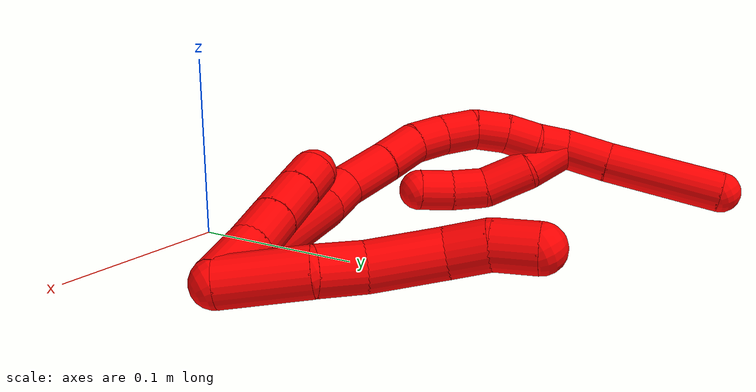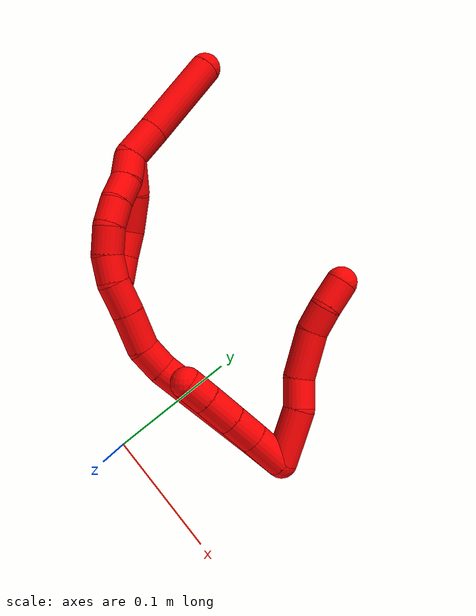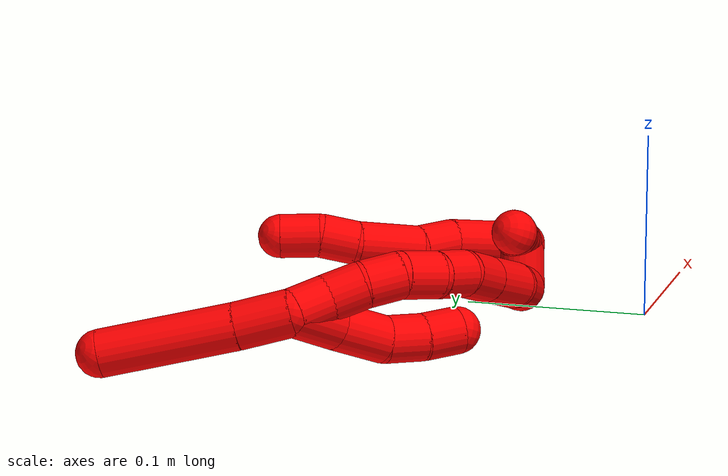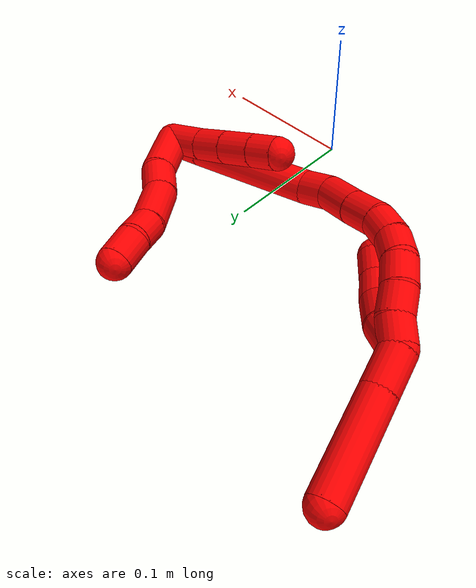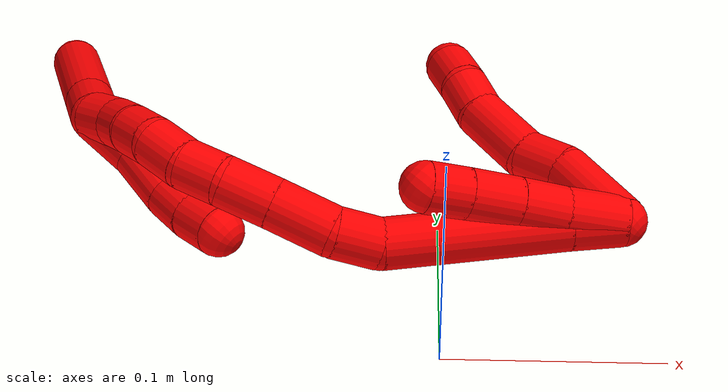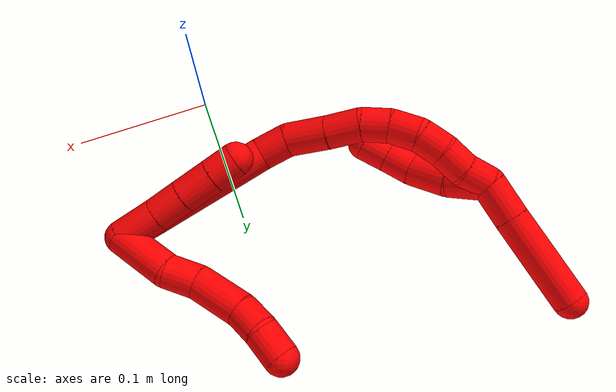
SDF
<sdf version="1.7">
 <world name="default">
  <model name="2">
   <static>0</static>
   <link name="2">
    <collision name="collision-cylinder-e_1_2_8">
     <pose>-0.0006 0.009678 0.019788 -0.454863 -0.027252 0.006307</pose>
     <geometry><cylinder><radius>0.0125</radius><length>0.044072</length></cylinder></geometry>
     <surface>
      <friction><ode><mu>1.16</mu><mu2>1.16</mu2><slip1>0</slip1><slip2>0</slip2></ode></friction>
      <contact><ode><kp>1e+06</kp><kd>1</kd><max_vel>0</max_vel><min_depth>0.001</min_depth></ode></contact>
     </surface>
    </collision>
    <visual name="visual-cylinder-e_1_2_8">
     <pose>-0.0006 0.009678 0.019788 -0.454863 -0.027252 0.006307</pose>
     <geometry><cylinder><radius>0.0125</radius><length>0.044072</length></cylinder></geometry>
     <material><ambient>1 0 0 1</ambient></material>
    </visual>
    <collision name="collision-cylinder-e_2_8_9">
     <pose>-0.004984 0.022444 0.050459 -0.276574 -0.322746 0.045305</pose>
     <geometry><cylinder><radius>0.0125</radius><length>0.023856</length></cylinder></geometry>
     <surface>
      <friction><ode><mu>1.16</mu><mu2>1.16</mu2><slip1>0</slip1><slip2>0</slip2></ode></friction>
      <contact><ode><kp>1e+06</kp><kd>1</kd><max_vel>0</max_vel><min_depth>0.001</min_depth></ode></contact>
     </surface>
    </collision>
    <visual name="visual-cylinder-e_2_8_9">
     <pose>-0.004984 0.022444 0.050459 -0.276574 -0.322746 0.045305</pose>
     <geometry><cylinder><radius>0.0125</radius><length>0.023856</length></cylinder></geometry>
     <material><ambient>1 0 0 1</ambient></material>
    </visual>
    <collision name="collision-cylinder-e_3_9_10">
     <pose>-0.00917 0.032739 0.079033 -0.386769 -0.021063 0.004125</pose>
     <geometry><cylinder><radius>0.0125</radius><length>0.038216</length></cylinder></geometry>
     <surface>
      <friction><ode><mu>1.16</mu><mu2>1.16</mu2><slip1>0</slip1><slip2>0</slip2></ode></friction>
      <contact><ode><kp>1e+06</kp><kd>1</kd><max_vel>0</max_vel><min_depth>0.001</min_depth></ode></contact>
     </surface>
    </collision>
    <visual name="visual-cylinder-e_3_9_10">
     <pose>-0.00917 0.032739 0.079033 -0.386769 -0.021063 0.004125</pose>
     <geometry><cylinder><radius>0.0125</radius><length>0.038216</length></cylinder></geometry>
     <material><ambient>1 0 0 1</ambient></material>
    </visual>
    <collision name="collision-cylinder-e_4_10_11">
     <pose>-0.007635 0.045069 0.105794 -0.514315 0.18385 -0.048476</pose>
     <geometry><cylinder><radius>0.0125</radius><length>0.021188</length></cylinder></geometry>
     <surface>
      <friction><ode><mu>1.16</mu><mu2>1.16</mu2><slip1>0</slip1><slip2>0</slip2></ode></friction>
      <contact><ode><kp>1e+06</kp><kd>1</kd><max_vel>0</max_vel><min_depth>0.001</min_depth></ode></contact>
     </surface>
    </collision>
    <visual name="visual-cylinder-e_4_10_11">
     <pose>-0.007635 0.045069 0.105794 -0.514315 0.18385 -0.048476</pose>
     <geometry><cylinder><radius>0.0125</radius><length>0.021188</length></cylinder></geometry>
     <material><ambient>1 0 0 1</ambient></material>
    </visual>
    <collision name="collision-cylinder-e_5_11_6">
     <pose>-0.005253 0.057787 0.123264 -0.734954 0.039358 -0.015153</pose>
     <geometry><cylinder><radius>0.0125</radius><length>0.022668</length></cylinder></geometry>
     <surface>
      <friction><ode><mu>1.16</mu><mu2>1.16</mu2><slip1>0</slip1><slip2>0</slip2></ode></friction>
      <contact><ode><kp>1e+06</kp><kd>1</kd><max_vel>0</max_vel><min_depth>0.001</min_depth></ode></contact>
     </surface>
    </collision>
    <visual name="visual-cylinder-e_5_11_6">
     <pose>-0.005253 0.057787 0.123264 -0.734954 0.039358 -0.015153</pose>
     <geometry><cylinder><radius>0.0125</radius><length>0.022668</length></cylinder></geometry>
     <material><ambient>1 0 0 1</ambient></material>
    </visual>
    <collision name="collision-cylinder-e_1_2_12">
     <pose>-0.005519 -0.008826 0.010967 0.677625 -0.373642 -0.133029</pose>
     <geometry><cylinder><radius>0.0125</radius><length>0.030241</length></cylinder></geometry>
     <surface>
      <friction><ode><mu>1.16</mu><mu2>1.16</mu2><slip1>0</slip1><slip2>0</slip2></ode></friction>
      <contact><ode><kp>1e+06</kp><kd>1</kd><max_vel>0</max_vel><min_depth>0.001</min_depth></ode></contact>
     </surface>
    </collision>
    <visual name="visual-cylinder-e_1_2_12">
     <pose>-0.005519 -0.008826 0.010967 0.677625 -0.373642 -0.133029</pose>
     <geometry><cylinder><radius>0.0125</radius><length>0.030241</length></cylinder></geometry>
     <material><ambient>1 0 0 1</ambient></material>
    </visual>
    <collision name="collision-cylinder-e_2_12_13">
     <pose>-0.014712 -0.024919 0.030553 0.700548 -0.314995 -0.115911</pose>
     <geometry><cylinder><radius>0.0125</radius><length>0.023716</length></cylinder></geometry>
     <surface>
      <friction><ode><mu>1.16</mu><mu2>1.16</mu2><slip1>0</slip1><slip2>0</slip2></ode></friction>
      <contact><ode><kp>1e+06</kp><kd>1</kd><max_vel>0</max_vel><min_depth>0.001</min_depth></ode></contact>
     </surface>
    </collision>
    <visual name="visual-cylinder-e_2_12_13">
     <pose>-0.014712 -0.024919 0.030553 0.700548 -0.314995 -0.115911</pose>
     <geometry><cylinder><radius>0.0125</radius><length>0.023716</length></cylinder></geometry>
     <material><ambient>1 0 0 1</ambient></material>
    </visual>
    <collision name="collision-cylinder-e_3_13_14">
     <pose>-0.022573 -0.040021 0.048424 0.702633 -0.332555 -0.122869</pose>
     <geometry><cylinder><radius>0.0125</radius><length>0.025651</length></cylinder></geometry>
     <surface>
      <friction><ode><mu>1.16</mu><mu2>1.16</mu2><slip1>0</slip1><slip2>0</slip2></ode></friction>
      <contact><ode><kp>1e+06</kp><kd>1</kd><max_vel>0</max_vel><min_depth>0.001</min_depth></ode></contact>
     </surface>
    </collision>
    <visual name="visual-cylinder-e_3_13_14">
     <pose>-0.022573 -0.040021 0.048424 0.702633 -0.332555 -0.122869</pose>
     <geometry><cylinder><radius>0.0125</radius><length>0.025651</length></cylinder></geometry>
     <material><ambient>1 0 0 1</ambient></material>
    </visual>
    <collision name="collision-cylinder-e_4_14_5">
     <pose>-0.030281 -0.054102 0.064924 0.711224 -0.352586 -0.132132</pose>
     <geometry><cylinder><radius>0.0125</radius><length>0.020392</length></cylinder></geometry>
     <surface>
      <friction><ode><mu>1.16</mu><mu2>1.16</mu2><slip1>0</slip1><slip2>0</slip2></ode></friction>
      <contact><ode><kp>1e+06</kp><kd>1</kd><max_vel>0</max_vel><min_depth>0.001</min_depth></ode></contact>
     </surface>
    </collision>
    <visual name="visual-cylinder-e_4_14_5">
     <pose>-0.030281 -0.054102 0.064924 0.711224 -0.352586 -0.132132</pose>
     <geometry><cylinder><radius>0.0125</radius><length>0.020392</length></cylinder></geometry>
     <material><ambient>1 0 0 1</ambient></material>
    </visual>
    <collision name="collision-cylinder-e_1_2_15">
     <pose>-0.007637 -0.007066 0.008508 0.693092 -0.604353 -0.224194</pose>
     <geometry><cylinder><radius>0.0125</radius><length>0.02688</length></cylinder></geometry>
     <surface>
      <friction><ode><mu>1.16</mu><mu2>1.16</mu2><slip1>0</slip1><slip2>0</slip2></ode></friction>
      <contact><ode><kp>1e+06</kp><kd>1</kd><max_vel>0</max_vel><min_depth>0.001</min_depth></ode></contact>
     </surface>
    </collision>
    <visual name="visual-cylinder-e_1_2_15">
     <pose>-0.007637 -0.007066 0.008508 0.693092 -0.604353 -0.224194</pose>
     <geometry><cylinder><radius>0.0125</radius><length>0.02688</length></cylinder></geometry>
     <material><ambient>1 0 0 1</ambient></material>
    </visual>
    <collision name="collision-cylinder-e_2_15_16">
     <pose>-0.041623 -0.038419 0.044971 0.715288 -0.618414 -0.237644</pose>
     <geometry><cylinder><radius>0.0125</radius><length>0.090899</length></cylinder></geometry>
     <surface>
      <friction><ode><mu>1.16</mu><mu2>1.16</mu2><slip1>0</slip1><slip2>0</slip2></ode></friction>
      <contact><ode><kp>1e+06</kp><kd>1</kd><max_vel>0</max_vel><min_depth>0.001</min_depth></ode></contact>
     </surface>
    </collision>
    <visual name="visual-cylinder-e_2_15_16">
     <pose>-0.041623 -0.038419 0.044971 0.715288 -0.618414 -0.237644</pose>
     <geometry><cylinder><radius>0.0125</radius><length>0.090899</length></cylinder></geometry>
     <material><ambient>1 0 0 1</ambient></material>
    </visual>
    <collision name="collision-cylinder-e_3_16_17">
     <pose>-0.071357 -0.068551 0.082134 0.56563 -0.300917 -0.088057</pose>
     <geometry><cylinder><radius>0.0125</radius><length>0.022839</length></cylinder></geometry>
     <surface>
      <friction><ode><mu>1.16</mu><mu2>1.16</mu2><slip1>0</slip1><slip2>0</slip2></ode></friction>
      <contact><ode><kp>1e+06</kp><kd>1</kd><max_vel>0</max_vel><min_depth>0.001</min_depth></ode></contact>
     </surface>
    </collision>
    <visual name="visual-cylinder-e_3_16_17">
     <pose>-0.071357 -0.068551 0.082134 0.56563 -0.300917 -0.088057</pose>
     <geometry><cylinder><radius>0.0125</radius><length>0.022839</length></cylinder></geometry>
     <material><ambient>1 0 0 1</ambient></material>
    </visual>
    <collision name="collision-cylinder-e_4_17_18">
     <pose>-0.077778 -0.078013 0.105977 0.242264 -0.198778 -0.024276</pose>
     <geometry><cylinder><radius>0.0125</radius><length>0.030757</length></cylinder></geometry>
     <surface>
      <friction><ode><mu>1.16</mu><mu2>1.16</mu2><slip1>0</slip1><slip2>0</slip2></ode></friction>
      <contact><ode><kp>1e+06</kp><kd>1</kd><max_vel>0</max_vel><min_depth>0.001</min_depth></ode></contact>
     </surface>
    </collision>
    <visual name="visual-cylinder-e_4_17_18">
     <pose>-0.077778 -0.078013 0.105977 0.242264 -0.198778 -0.024276</pose>
     <geometry><cylinder><radius>0.0125</radius><length>0.030757</length></cylinder></geometry>
     <material><ambient>1 0 0 1</ambient></material>
    </visual>
    <collision name="collision-cylinder-e_5_18_19">
     <pose>-0.083458 -0.085246 0.132667 0.291425 -0.207016 -0.030487</pose>
     <geometry><cylinder><radius>0.0125</radius><length>0.025719</length></cylinder></geometry>
     <surface>
      <friction><ode><mu>1.16</mu><mu2>1.16</mu2><slip1>0</slip1><slip2>0</slip2></ode></friction>
      <contact><ode><kp>1e+06</kp><kd>1</kd><max_vel>0</max_vel><min_depth>0.001</min_depth></ode></contact>
     </surface>
    </collision>
    <visual name="visual-cylinder-e_5_18_19">
     <pose>-0.083458 -0.085246 0.132667 0.291425 -0.207016 -0.030487</pose>
     <geometry><cylinder><radius>0.0125</radius><length>0.025719</length></cylinder></geometry>
     <material><ambient>1 0 0 1</ambient></material>
    </visual>
    <collision name="collision-cylinder-e_6_19_20">
     <pose>-0.088996 -0.08892 0.154673 0.005895 -0.28309 -0.00084</pose>
     <geometry><cylinder><radius>0.0125</radius><length>0.020729</length></cylinder></geometry>
     <surface>
      <friction><ode><mu>1.16</mu><mu2>1.16</mu2><slip1>0</slip1><slip2>0</slip2></ode></friction>
      <contact><ode><kp>1e+06</kp><kd>1</kd><max_vel>0</max_vel><min_depth>0.001</min_depth></ode></contact>
     </surface>
    </collision>
    <visual name="visual-cylinder-e_6_19_20">
     <pose>-0.088996 -0.08892 0.154673 0.005895 -0.28309 -0.00084</pose>
     <geometry><cylinder><radius>0.0125</radius><length>0.020729</length></cylinder></geometry>
     <material><ambient>1 0 0 1</ambient></material>
    </visual>
    <collision name="collision-cylinder-e_7_20_21">
     <pose>-0.093566 -0.0864 0.175113 -0.241135 -0.153833 0.018674</pose>
     <geometry><cylinder><radius>0.0125</radius><length>0.021859</length></cylinder></geometry>
     <surface>
      <friction><ode><mu>1.16</mu><mu2>1.16</mu2><slip1>0</slip1><slip2>0</slip2></ode></friction>
      <contact><ode><kp>1e+06</kp><kd>1</kd><max_vel>0</max_vel><min_depth>0.001</min_depth></ode></contact>
     </surface>
    </collision>
    <visual name="visual-cylinder-e_7_20_21">
     <pose>-0.093566 -0.0864 0.175113 -0.241135 -0.153833 0.018674</pose>
     <geometry><cylinder><radius>0.0125</radius><length>0.021859</length></cylinder></geometry>
     <material><ambient>1 0 0 1</ambient></material>
    </visual>
    <collision name="collision-cylinder-e_8_21_22">
     <pose>-0.0981 -0.078724 0.193867 -0.552504 -0.286318 0.081685</pose>
     <geometry><cylinder><radius>0.0125</radius><length>0.020246</length></cylinder></geometry>
     <surface>
      <friction><ode><mu>1.16</mu><mu2>1.16</mu2><slip1>0</slip1><slip2>0</slip2></ode></friction>
      <contact><ode><kp>1e+06</kp><kd>1</kd><max_vel>0</max_vel><min_depth>0.001</min_depth></ode></contact>
     </surface>
    </collision>
    <visual name="visual-cylinder-e_8_21_22">
     <pose>-0.0981 -0.078724 0.193867 -0.552504 -0.286318 0.081685</pose>
     <geometry><cylinder><radius>0.0125</radius><length>0.020246</length></cylinder></geometry>
     <material><ambient>1 0 0 1</ambient></material>
    </visual>
    <collision name="collision-cylinder-e_9_22_23">
     <pose>-0.104223 -0.06721 0.209104 -0.744023 -0.331807 0.13048</pose>
     <geometry><cylinder><radius>0.0125</radius><length>0.020043</length></cylinder></geometry>
     <surface>
      <friction><ode><mu>1.16</mu><mu2>1.16</mu2><slip1>0</slip1><slip2>0</slip2></ode></friction>
      <contact><ode><kp>1e+06</kp><kd>1</kd><max_vel>0</max_vel><min_depth>0.001</min_depth></ode></contact>
     </surface>
    </collision>
    <visual name="visual-cylinder-e_9_22_23">
     <pose>-0.104223 -0.06721 0.209104 -0.744023 -0.331807 0.13048</pose>
     <geometry><cylinder><radius>0.0125</radius><length>0.020043</length></cylinder></geometry>
     <material><ambient>1 0 0 1</ambient></material>
    </visual>
    <collision name="collision-cylinder-e_10_23_1">
     <pose>-0.111641 -0.056432 0.224077 -0.499013 -0.427627 0.110545</pose>
     <geometry><cylinder><radius>0.0125</radius><length>0.020029</length></cylinder></geometry>
     <surface>
      <friction><ode><mu>1.16</mu><mu2>1.16</mu2><slip1>0</slip1><slip2>0</slip2></ode></friction>
      <contact><ode><kp>1e+06</kp><kd>1</kd><max_vel>0</max_vel><min_depth>0.001</min_depth></ode></contact>
     </surface>
    </collision>
    <visual name="visual-cylinder-e_10_23_1">
     <pose>-0.111641 -0.056432 0.224077 -0.499013 -0.427627 0.110545</pose>
     <geometry><cylinder><radius>0.0125</radius><length>0.020029</length></cylinder></geometry>
     <material><ambient>1 0 0 1</ambient></material>
    </visual>
    <collision name="collision-cylinder-e_1_1_24">
     <pose>-0.117575 -0.040533 0.240804 -0.923304 -0.122483 0.060994</pose>
     <geometry><cylinder><radius>0.0125</radius><length>0.029151</length></cylinder></geometry>
     <surface>
      <friction><ode><mu>1.16</mu><mu2>1.16</mu2><slip1>0</slip1><slip2>0</slip2></ode></friction>
      <contact><ode><kp>1e+06</kp><kd>1</kd><max_vel>0</max_vel><min_depth>0.001</min_depth></ode></contact>
     </surface>
    </collision>
    <visual name="visual-cylinder-e_1_1_24">
     <pose>-0.117575 -0.040533 0.240804 -0.923304 -0.122483 0.060994</pose>
     <geometry><cylinder><radius>0.0125</radius><length>0.029151</length></cylinder></geometry>
     <material><ambient>1 0 0 1</ambient></material>
    </visual>
    <collision name="collision-cylinder-e_2_24_4">
     <pose>-0.122509 -0.001579 0.271741 -0.889906 -0.08914 0.042528</pose>
     <geometry><cylinder><radius>0.0125</radius><length>0.070849</length></cylinder></geometry>
     <surface>
      <friction><ode><mu>1.16</mu><mu2>1.16</mu2><slip1>0</slip1><slip2>0</slip2></ode></friction>
      <contact><ode><kp>1e+06</kp><kd>1</kd><max_vel>0</max_vel><min_depth>0.001</min_depth></ode></contact>
     </surface>
    </collision>
    <visual name="visual-cylinder-e_2_24_4">
     <pose>-0.122509 -0.001579 0.271741 -0.889906 -0.08914 0.042528</pose>
     <geometry><cylinder><radius>0.0125</radius><length>0.070849</length></cylinder></geometry>
     <material><ambient>1 0 0 1</ambient></material>
    </visual>
    <collision name="collision-cylinder-e_1_1_25">
     <pose>-0.115998 -0.051834 0.217521 -3.12529 -0.01398 1.41786</pose>
     <geometry><cylinder><radius>0.0125</radius><length>0.029122</length></cylinder></geometry>
     <surface>
      <friction><ode><mu>1.16</mu><mu2>1.16</mu2><slip1>0</slip1><slip2>0</slip2></ode></friction>
      <contact><ode><kp>1e+06</kp><kd>1</kd><max_vel>0</max_vel><min_depth>0.001</min_depth></ode></contact>
     </surface>
    </collision>
    <visual name="visual-cylinder-e_1_1_25">
     <pose>-0.115998 -0.051834 0.217521 -3.12529 -0.01398 1.41786</pose>
     <geometry><cylinder><radius>0.0125</radius><length>0.029122</length></cylinder></geometry>
     <material><ambient>1 0 0 1</ambient></material>
    </visual>
    <collision name="collision-cylinder-e_2_25_26">
     <pose>-0.117666 -0.054416 0.18857 2.94815 -0.099557 -0.948762</pose>
     <geometry><cylinder><radius>0.0125</radius><length>0.02948</length></cylinder></geometry>
     <surface>
      <friction><ode><mu>1.16</mu><mu2>1.16</mu2><slip1>0</slip1><slip2>0</slip2></ode></friction>
      <contact><ode><kp>1e+06</kp><kd>1</kd><max_vel>0</max_vel><min_depth>0.001</min_depth></ode></contact>
     </surface>
    </collision>
    <visual name="visual-cylinder-e_2_25_26">
     <pose>-0.117666 -0.054416 0.18857 2.94815 -0.099557 -0.948762</pose>
     <geometry><cylinder><radius>0.0125</radius><length>0.02948</length></cylinder></geometry>
     <material><ambient>1 0 0 1</ambient></material>
    </visual>
    <collision name="collision-cylinder-e_3_26_27">
     <pose>-0.117744 -0.061492 0.164575 2.72428 0.131364 0.602391</pose>
     <geometry><cylinder><radius>0.0125</radius><length>0.021187</length></cylinder></geometry>
     <surface>
      <friction><ode><mu>1.16</mu><mu2>1.16</mu2><slip1>0</slip1><slip2>0</slip2></ode></friction>
      <contact><ode><kp>1e+06</kp><kd>1</kd><max_vel>0</max_vel><min_depth>0.001</min_depth></ode></contact>
     </surface>
    </collision>
    <visual name="visual-cylinder-e_3_26_27">
     <pose>-0.117744 -0.061492 0.164575 2.72428 0.131364 0.602391</pose>
     <geometry><cylinder><radius>0.0125</radius><length>0.021187</length></cylinder></geometry>
     <material><ambient>1 0 0 1</ambient></material>
    </visual>
    <collision name="collision-cylinder-e_4_27_3">
     <pose>-0.113743 -0.069816 0.1461 2.71185 0.261606 1.08495</pose>
     <geometry><cylinder><radius>0.0125</radius><length>0.020211</length></cylinder></geometry>
     <surface>
      <friction><ode><mu>1.16</mu><mu2>1.16</mu2><slip1>0</slip1><slip2>0</slip2></ode></friction>
      <contact><ode><kp>1e+06</kp><kd>1</kd><max_vel>0</max_vel><min_depth>0.001</min_depth></ode></contact>
     </surface>
    </collision>
    <visual name="visual-cylinder-e_4_27_3">
     <pose>-0.113743 -0.069816 0.1461 2.71185 0.261606 1.08495</pose>
     <geometry><cylinder><radius>0.0125</radius><length>0.020211</length></cylinder></geometry>
     <material><ambient>1 0 0 1</ambient></material>
    </visual>
    <collision name="collision-sphere-3">
     <pose>-0.111129 -0.073883 0.137226 0 -0 0</pose>
     <geometry><sphere><radius>0.0125</radius></sphere></geometry>
     <surface>
      <friction><ode><mu>1.16</mu><mu2>1.16</mu2><slip1>0</slip1><slip2>0</slip2></ode></friction>
      <contact><ode><kp>1e+06</kp><kd>1</kd><max_vel>0</max_vel><min_depth>0.001</min_depth></ode></contact>
     </surface>
    </collision>
    <visual name="visual-sphere-3">
     <pose>-0.111129 -0.073883 0.137226 0 -0 0</pose>
     <geometry><sphere><radius>0.0125</radius></sphere></geometry>
     <material><ambient>1 0 0 1</ambient></material>
    </visual>
    <collision name="collision-sphere-27">
     <pose>-0.116356 -0.065749 0.154974 0 -0 0</pose>
     <geometry><sphere><radius>0.0125</radius></sphere></geometry>
     <surface>
      <friction><ode><mu>1.16</mu><mu2>1.16</mu2><slip1>0</slip1><slip2>0</slip2></ode></friction>
      <contact><ode><kp>1e+06</kp><kd>1</kd><max_vel>0</max_vel><min_depth>0.001</min_depth></ode></contact>
     </surface>
    </collision>
    <visual name="visual-sphere-27">
     <pose>-0.116356 -0.065749 0.154974 0 -0 0</pose>
     <geometry><sphere><radius>0.0125</radius></sphere></geometry>
     <material><ambient>1 0 0 1</ambient></material>
    </visual>
    <collision name="collision-sphere-26">
     <pose>-0.119131 -0.057236 0.174176 0 -0 0</pose>
     <geometry><sphere><radius>0.0125</radius></sphere></geometry>
     <surface>
      <friction><ode><mu>1.16</mu><mu2>1.16</mu2><slip1>0</slip1><slip2>0</slip2></ode></friction>
      <contact><ode><kp>1e+06</kp><kd>1</kd><max_vel>0</max_vel><min_depth>0.001</min_depth></ode></contact>
     </surface>
    </collision>
    <visual name="visual-sphere-26">
     <pose>-0.119131 -0.057236 0.174176 0 -0 0</pose>
     <geometry><sphere><radius>0.0125</radius></sphere></geometry>
     <material><ambient>1 0 0 1</ambient></material>
    </visual>
    <collision name="collision-sphere-25">
     <pose>-0.116201 -0.051597 0.202964 0 -0 0</pose>
     <geometry><sphere><radius>0.0125</radius></sphere></geometry>
     <surface>
      <friction><ode><mu>1.16</mu><mu2>1.16</mu2><slip1>0</slip1><slip2>0</slip2></ode></friction>
      <contact><ode><kp>1e+06</kp><kd>1</kd><max_vel>0</max_vel><min_depth>0.001</min_depth></ode></contact>
     </surface>
    </collision>
    <visual name="visual-sphere-25">
     <pose>-0.116201 -0.051597 0.202964 0 -0 0</pose>
     <geometry><sphere><radius>0.0125</radius></sphere></geometry>
     <material><ambient>1 0 0 1</ambient></material>
    </visual>
    <collision name="collision-sphere-4">
     <pose>-0.125663 0.025837 0.293952 0 -0 0</pose>
     <geometry><sphere><radius>0.0125</radius></sphere></geometry>
     <surface>
      <friction><ode><mu>1.16</mu><mu2>1.16</mu2><slip1>0</slip1><slip2>0</slip2></ode></friction>
      <contact><ode><kp>1e+06</kp><kd>1</kd><max_vel>0</max_vel><min_depth>0.001</min_depth></ode></contact>
     </surface>
    </collision>
    <visual name="visual-sphere-4">
     <pose>-0.125663 0.025837 0.293952 0 -0 0</pose>
     <geometry><sphere><radius>0.0125</radius></sphere></geometry>
     <material><ambient>1 0 0 1</ambient></material>
    </visual>
    <collision name="collision-sphere-24">
     <pose>-0.119356 -0.028995 0.24953 0 -0 0</pose>
     <geometry><sphere><radius>0.0125</radius></sphere></geometry>
     <surface>
      <friction><ode><mu>1.16</mu><mu2>1.16</mu2><slip1>0</slip1><slip2>0</slip2></ode></friction>
      <contact><ode><kp>1e+06</kp><kd>1</kd><max_vel>0</max_vel><min_depth>0.001</min_depth></ode></contact>
     </surface>
    </collision>
    <visual name="visual-sphere-24">
     <pose>-0.119356 -0.028995 0.24953 0 -0 0</pose>
     <geometry><sphere><radius>0.0125</radius></sphere></geometry>
     <material><ambient>1 0 0 1</ambient></material>
    </visual>
    <collision name="collision-sphere-1">
     <pose>-0.115794 -0.052071 0.232079 0 -0 0</pose>
     <geometry><sphere><radius>0.0125</radius></sphere></geometry>
     <surface>
      <friction><ode><mu>1.16</mu><mu2>1.16</mu2><slip1>0</slip1><slip2>0</slip2></ode></friction>
      <contact><ode><kp>1e+06</kp><kd>1</kd><max_vel>0</max_vel><min_depth>0.001</min_depth></ode></contact>
     </surface>
    </collision>
    <visual name="visual-sphere-1">
     <pose>-0.115794 -0.052071 0.232079 0 -0 0</pose>
     <geometry><sphere><radius>0.0125</radius></sphere></geometry>
     <material><ambient>1 0 0 1</ambient></material>
    </visual>
    <collision name="collision-sphere-23">
     <pose>-0.107488 -0.060793 0.216076 0 -0 0</pose>
     <geometry><sphere><radius>0.0125</radius></sphere></geometry>
     <surface>
      <friction><ode><mu>1.16</mu><mu2>1.16</mu2><slip1>0</slip1><slip2>0</slip2></ode></friction>
      <contact><ode><kp>1e+06</kp><kd>1</kd><max_vel>0</max_vel><min_depth>0.001</min_depth></ode></contact>
     </surface>
    </collision>
    <visual name="visual-sphere-23">
     <pose>-0.107488 -0.060793 0.216076 0 -0 0</pose>
     <geometry><sphere><radius>0.0125</radius></sphere></geometry>
     <material><ambient>1 0 0 1</ambient></material>
    </visual>
    <collision name="collision-sphere-22">
     <pose>-0.100959 -0.073627 0.202133 0 -0 0</pose>
     <geometry><sphere><radius>0.0125</radius></sphere></geometry>
     <surface>
      <friction><ode><mu>1.16</mu><mu2>1.16</mu2><slip1>0</slip1><slip2>0</slip2></ode></friction>
      <contact><ode><kp>1e+06</kp><kd>1</kd><max_vel>0</max_vel><min_depth>0.001</min_depth></ode></contact>
     </surface>
    </collision>
    <visual name="visual-sphere-22">
     <pose>-0.100959 -0.073627 0.202133 0 -0 0</pose>
     <geometry><sphere><radius>0.0125</radius></sphere></geometry>
     <material><ambient>1 0 0 1</ambient></material>
    </visual>
    <collision name="collision-sphere-21">
     <pose>-0.095241 -0.08382 0.185601 0 -0 0</pose>
     <geometry><sphere><radius>0.0125</radius></sphere></geometry>
     <surface>
      <friction><ode><mu>1.16</mu><mu2>1.16</mu2><slip1>0</slip1><slip2>0</slip2></ode></friction>
      <contact><ode><kp>1e+06</kp><kd>1</kd><max_vel>0</max_vel><min_depth>0.001</min_depth></ode></contact>
     </surface>
    </collision>
    <visual name="visual-sphere-21">
     <pose>-0.095241 -0.08382 0.185601 0 -0 0</pose>
     <geometry><sphere><radius>0.0125</radius></sphere></geometry>
     <material><ambient>1 0 0 1</ambient></material>
    </visual>
    <collision name="collision-sphere-6">
     <pose>-0.004807 0.065381 0.131665 0 -0 0</pose>
     <geometry><sphere><radius>0.0125</radius></sphere></geometry>
     <surface>
      <friction><ode><mu>1.16</mu><mu2>1.16</mu2><slip1>0</slip1><slip2>0</slip2></ode></friction>
      <contact><ode><kp>1e+06</kp><kd>1</kd><max_vel>0</max_vel><min_depth>0.001</min_depth></ode></contact>
     </surface>
    </collision>
    <visual name="visual-sphere-6">
     <pose>-0.004807 0.065381 0.131665 0 -0 0</pose>
     <geometry><sphere><radius>0.0125</radius></sphere></geometry>
     <material><ambient>1 0 0 1</ambient></material>
    </visual>
    <collision name="collision-sphere-11">
     <pose>-0.005699 0.050193 0.114862 0 -0 0</pose>
     <geometry><sphere><radius>0.0125</radius></sphere></geometry>
     <surface>
      <friction><ode><mu>1.16</mu><mu2>1.16</mu2><slip1>0</slip1><slip2>0</slip2></ode></friction>
      <contact><ode><kp>1e+06</kp><kd>1</kd><max_vel>0</max_vel><min_depth>0.001</min_depth></ode></contact>
     </surface>
    </collision>
    <visual name="visual-sphere-11">
     <pose>-0.005699 0.050193 0.114862 0 -0 0</pose>
     <geometry><sphere><radius>0.0125</radius></sphere></geometry>
     <material><ambient>1 0 0 1</ambient></material>
    </visual>
    <collision name="collision-sphere-10">
     <pose>-0.009572 0.039945 0.096726 0 -0 0</pose>
     <geometry><sphere><radius>0.0125</radius></sphere></geometry>
     <surface>
      <friction><ode><mu>1.16</mu><mu2>1.16</mu2><slip1>0</slip1><slip2>0</slip2></ode></friction>
      <contact><ode><kp>1e+06</kp><kd>1</kd><max_vel>0</max_vel><min_depth>0.001</min_depth></ode></contact>
     </surface>
    </collision>
    <visual name="visual-sphere-10">
     <pose>-0.009572 0.039945 0.096726 0 -0 0</pose>
     <geometry><sphere><radius>0.0125</radius></sphere></geometry>
     <material><ambient>1 0 0 1</ambient></material>
    </visual>
    <collision name="collision-sphere-9">
     <pose>-0.008767 0.025533 0.061341 0 -0 0</pose>
     <geometry><sphere><radius>0.0125</radius></sphere></geometry>
     <surface>
      <friction><ode><mu>1.16</mu><mu2>1.16</mu2><slip1>0</slip1><slip2>0</slip2></ode></friction>
      <contact><ode><kp>1e+06</kp><kd>1</kd><max_vel>0</max_vel><min_depth>0.001</min_depth></ode></contact>
     </surface>
    </collision>
    <visual name="visual-sphere-9">
     <pose>-0.008767 0.025533 0.061341 0 -0 0</pose>
     <geometry><sphere><radius>0.0125</radius></sphere></geometry>
     <material><ambient>1 0 0 1</ambient></material>
    </visual>
    <collision name="collision-sphere-2">
     <geometry><sphere><radius>0.0125</radius></sphere></geometry>
     <surface>
      <friction><ode><mu>1.16</mu><mu2>1.16</mu2><slip1>0</slip1><slip2>0</slip2></ode></friction>
      <contact><ode><kp>1e+06</kp><kd>1</kd><max_vel>0</max_vel><min_depth>0.001</min_depth></ode></contact>
     </surface>
    </collision>
    <visual name="visual-sphere-2">
     <geometry><sphere><radius>0.0125</radius></sphere></geometry>
     <material><ambient>1 0 0 1</ambient></material>
    </visual>
    <collision name="collision-sphere-19">
     <pose>-0.086101 -0.088861 0.144721 0 -0 0</pose>
     <geometry><sphere><radius>0.0125</radius></sphere></geometry>
     <surface>
      <friction><ode><mu>1.16</mu><mu2>1.16</mu2><slip1>0</slip1><slip2>0</slip2></ode></friction>
      <contact><ode><kp>1e+06</kp><kd>1</kd><max_vel>0</max_vel><min_depth>0.001</min_depth></ode></contact>
     </surface>
    </collision>
    <visual name="visual-sphere-19">
     <pose>-0.086101 -0.088861 0.144721 0 -0 0</pose>
     <geometry><sphere><radius>0.0125</radius></sphere></geometry>
     <material><ambient>1 0 0 1</ambient></material>
    </visual>
    <collision name="collision-sphere-8">
     <pose>-0.001201 0.019356 0.039576 0 -0 0</pose>
     <geometry><sphere><radius>0.0125</radius></sphere></geometry>
     <surface>
      <friction><ode><mu>1.16</mu><mu2>1.16</mu2><slip1>0</slip1><slip2>0</slip2></ode></friction>
      <contact><ode><kp>1e+06</kp><kd>1</kd><max_vel>0</max_vel><min_depth>0.001</min_depth></ode></contact>
     </surface>
    </collision>
    <visual name="visual-sphere-8">
     <pose>-0.001201 0.019356 0.039576 0 -0 0</pose>
     <geometry><sphere><radius>0.0125</radius></sphere></geometry>
     <material><ambient>1 0 0 1</ambient></material>
    </visual>
    <collision name="collision-sphere-12">
     <pose>-0.011038 -0.017651 0.021934 0 -0 0</pose>
     <geometry><sphere><radius>0.0125</radius></sphere></geometry>
     <surface>
      <friction><ode><mu>1.16</mu><mu2>1.16</mu2><slip1>0</slip1><slip2>0</slip2></ode></friction>
      <contact><ode><kp>1e+06</kp><kd>1</kd><max_vel>0</max_vel><min_depth>0.001</min_depth></ode></contact>
     </surface>
    </collision>
    <visual name="visual-sphere-12">
     <pose>-0.011038 -0.017651 0.021934 0 -0 0</pose>
     <geometry><sphere><radius>0.0125</radius></sphere></geometry>
     <material><ambient>1 0 0 1</ambient></material>
    </visual>
    <collision name="collision-sphere-13">
     <pose>-0.018386 -0.032187 0.039173 0 -0 0</pose>
     <geometry><sphere><radius>0.0125</radius></sphere></geometry>
     <surface>
      <friction><ode><mu>1.16</mu><mu2>1.16</mu2><slip1>0</slip1><slip2>0</slip2></ode></friction>
      <contact><ode><kp>1e+06</kp><kd>1</kd><max_vel>0</max_vel><min_depth>0.001</min_depth></ode></contact>
     </surface>
    </collision>
    <visual name="visual-sphere-13">
     <pose>-0.018386 -0.032187 0.039173 0 -0 0</pose>
     <geometry><sphere><radius>0.0125</radius></sphere></geometry>
     <material><ambient>1 0 0 1</ambient></material>
    </visual>
    <collision name="collision-sphere-14">
     <pose>-0.02676 -0.047855 0.057675 0 -0 0</pose>
     <geometry><sphere><radius>0.0125</radius></sphere></geometry>
     <surface>
      <friction><ode><mu>1.16</mu><mu2>1.16</mu2><slip1>0</slip1><slip2>0</slip2></ode></friction>
      <contact><ode><kp>1e+06</kp><kd>1</kd><max_vel>0</max_vel><min_depth>0.001</min_depth></ode></contact>
     </surface>
    </collision>
    <visual name="visual-sphere-14">
     <pose>-0.02676 -0.047855 0.057675 0 -0 0</pose>
     <geometry><sphere><radius>0.0125</radius></sphere></geometry>
     <material><ambient>1 0 0 1</ambient></material>
    </visual>
    <collision name="collision-sphere-5">
     <pose>-0.033802 -0.060348 0.072173 0 -0 0</pose>
     <geometry><sphere><radius>0.0125</radius></sphere></geometry>
     <surface>
      <friction><ode><mu>1.16</mu><mu2>1.16</mu2><slip1>0</slip1><slip2>0</slip2></ode></friction>
      <contact><ode><kp>1e+06</kp><kd>1</kd><max_vel>0</max_vel><min_depth>0.001</min_depth></ode></contact>
     </surface>
    </collision>
    <visual name="visual-sphere-5">
     <pose>-0.033802 -0.060348 0.072173 0 -0 0</pose>
     <geometry><sphere><radius>0.0125</radius></sphere></geometry>
     <material><ambient>1 0 0 1</ambient></material>
    </visual>
    <collision name="collision-sphere-15">
     <pose>-0.015274 -0.014132 0.017015 0 -0 0</pose>
     <geometry><sphere><radius>0.0125</radius></sphere></geometry>
     <surface>
      <friction><ode><mu>1.16</mu><mu2>1.16</mu2><slip1>0</slip1><slip2>0</slip2></ode></friction>
      <contact><ode><kp>1e+06</kp><kd>1</kd><max_vel>0</max_vel><min_depth>0.001</min_depth></ode></contact>
     </surface>
    </collision>
    <visual name="visual-sphere-15">
     <pose>-0.015274 -0.014132 0.017015 0 -0 0</pose>
     <geometry><sphere><radius>0.0125</radius></sphere></geometry>
     <material><ambient>1 0 0 1</ambient></material>
    </visual>
    <collision name="collision-sphere-16">
     <pose>-0.067972 -0.062706 0.072927 0 -0 0</pose>
     <geometry><sphere><radius>0.0125</radius></sphere></geometry>
     <surface>
      <friction><ode><mu>1.16</mu><mu2>1.16</mu2><slip1>0</slip1><slip2>0</slip2></ode></friction>
      <contact><ode><kp>1e+06</kp><kd>1</kd><max_vel>0</max_vel><min_depth>0.001</min_depth></ode></contact>
     </surface>
    </collision>
    <visual name="visual-sphere-16">
     <pose>-0.067972 -0.062706 0.072927 0 -0 0</pose>
     <geometry><sphere><radius>0.0125</radius></sphere></geometry>
     <material><ambient>1 0 0 1</ambient></material>
    </visual>
    <collision name="collision-sphere-17">
     <pose>-0.074741 -0.074396 0.091342 0 -0 0</pose>
     <geometry><sphere><radius>0.0125</radius></sphere></geometry>
     <surface>
      <friction><ode><mu>1.16</mu><mu2>1.16</mu2><slip1>0</slip1><slip2>0</slip2></ode></friction>
      <contact><ode><kp>1e+06</kp><kd>1</kd><max_vel>0</max_vel><min_depth>0.001</min_depth></ode></contact>
     </surface>
    </collision>
    <visual name="visual-sphere-17">
     <pose>-0.074741 -0.074396 0.091342 0 -0 0</pose>
     <geometry><sphere><radius>0.0125</radius></sphere></geometry>
     <material><ambient>1 0 0 1</ambient></material>
    </visual>
    <collision name="collision-sphere-18">
     <pose>-0.080815 -0.08163 0.120613 0 -0 0</pose>
     <geometry><sphere><radius>0.0125</radius></sphere></geometry>
     <surface>
      <friction><ode><mu>1.16</mu><mu2>1.16</mu2><slip1>0</slip1><slip2>0</slip2></ode></friction>
      <contact><ode><kp>1e+06</kp><kd>1</kd><max_vel>0</max_vel><min_depth>0.001</min_depth></ode></contact>
     </surface>
    </collision>
    <visual name="visual-sphere-18">
     <pose>-0.080815 -0.08163 0.120613 0 -0 0</pose>
     <geometry><sphere><radius>0.0125</radius></sphere></geometry>
     <material><ambient>1 0 0 1</ambient></material>
    </visual>
    <collision name="collision-sphere-20">
     <pose>-0.091891 -0.088979 0.164625 0 -0 0</pose>
     <geometry><sphere><radius>0.0125</radius></sphere></geometry>
     <surface>
      <friction><ode><mu>1.16</mu><mu2>1.16</mu2><slip1>0</slip1><slip2>0</slip2></ode></friction>
      <contact><ode><kp>1e+06</kp><kd>1</kd><max_vel>0</max_vel><min_depth>0.001</min_depth></ode></contact>
     </surface>
    </collision>
    <visual name="visual-sphere-20">
     <pose>-0.091891 -0.088979 0.164625 0 -0 0</pose>
     <geometry><sphere><radius>0.0125</radius></sphere></geometry>
     <material><ambient>1 0 0 1</ambient></material>
    </visual>
    <inertial>
     <pose>-0.062126 -0.031031 0.121149 0 -0 0</pose>
     <mass>0.75</mass>
     <inertia><ixx>0.000116</ixx><ixy>0</ixy><ixz>0</ixz><iyy>0.000106</iyy><iyz>0</iyz><izz>9e-05</izz></inertia>
    </inertial>
   </link>
   <pose>0.087103 0.090443 0.014194 -0.904883 -0.918689 0.396279</pose>
  </model>
 </world>
</sdf>
